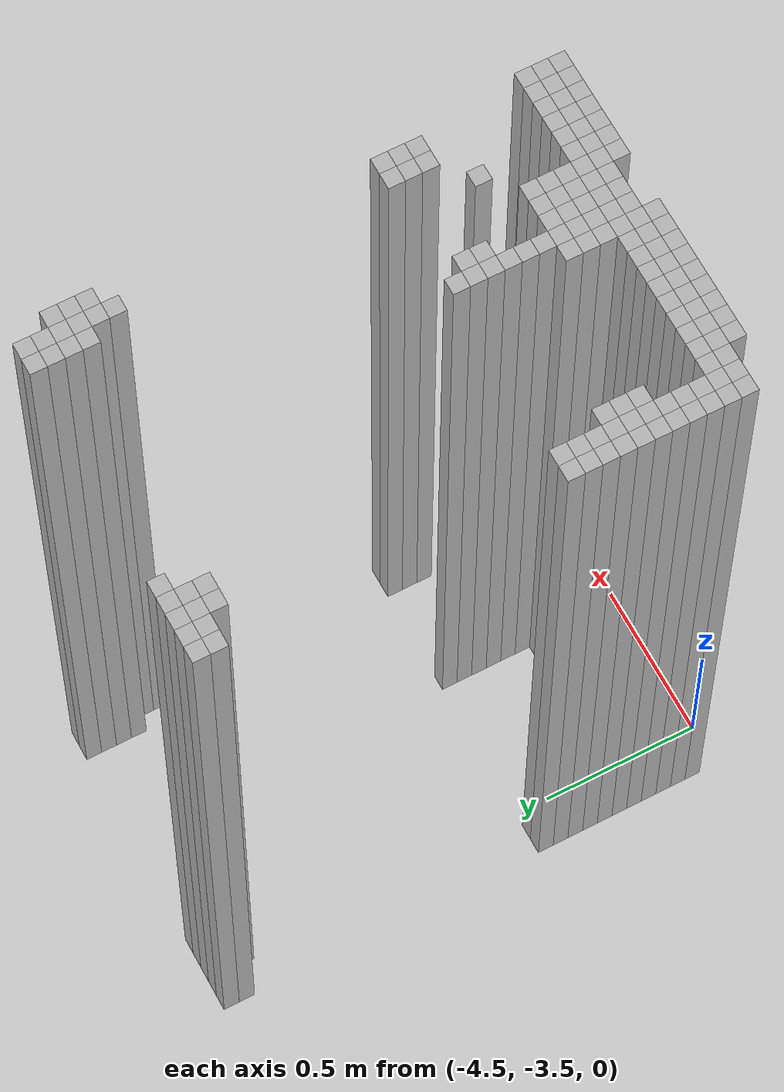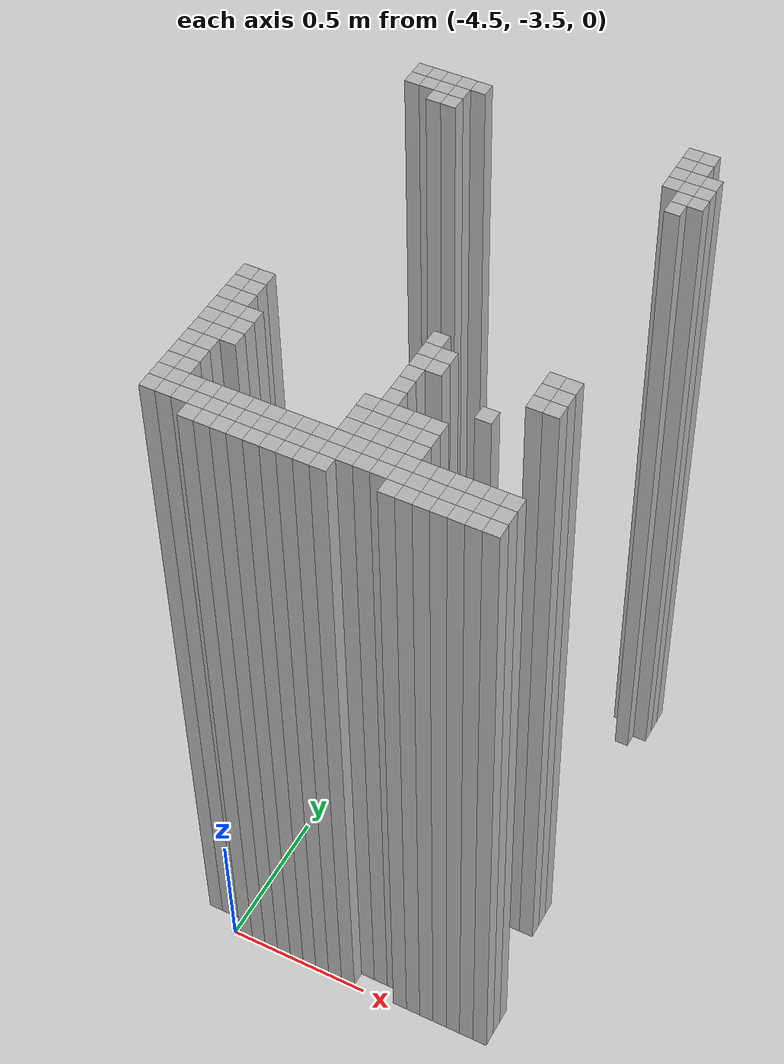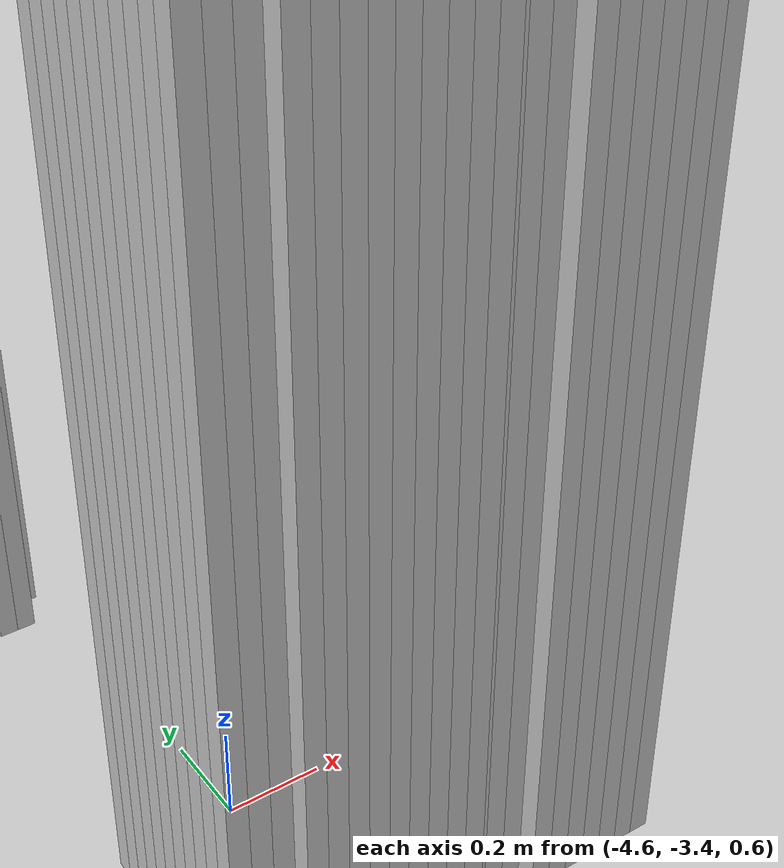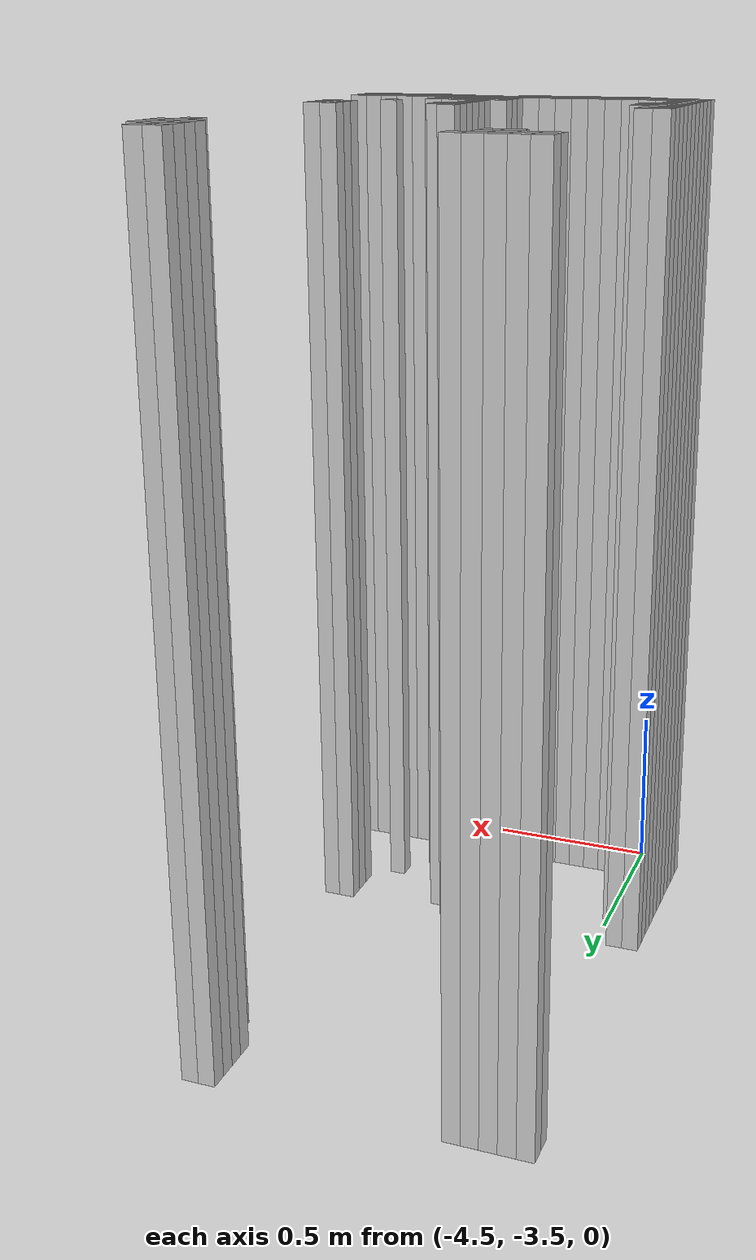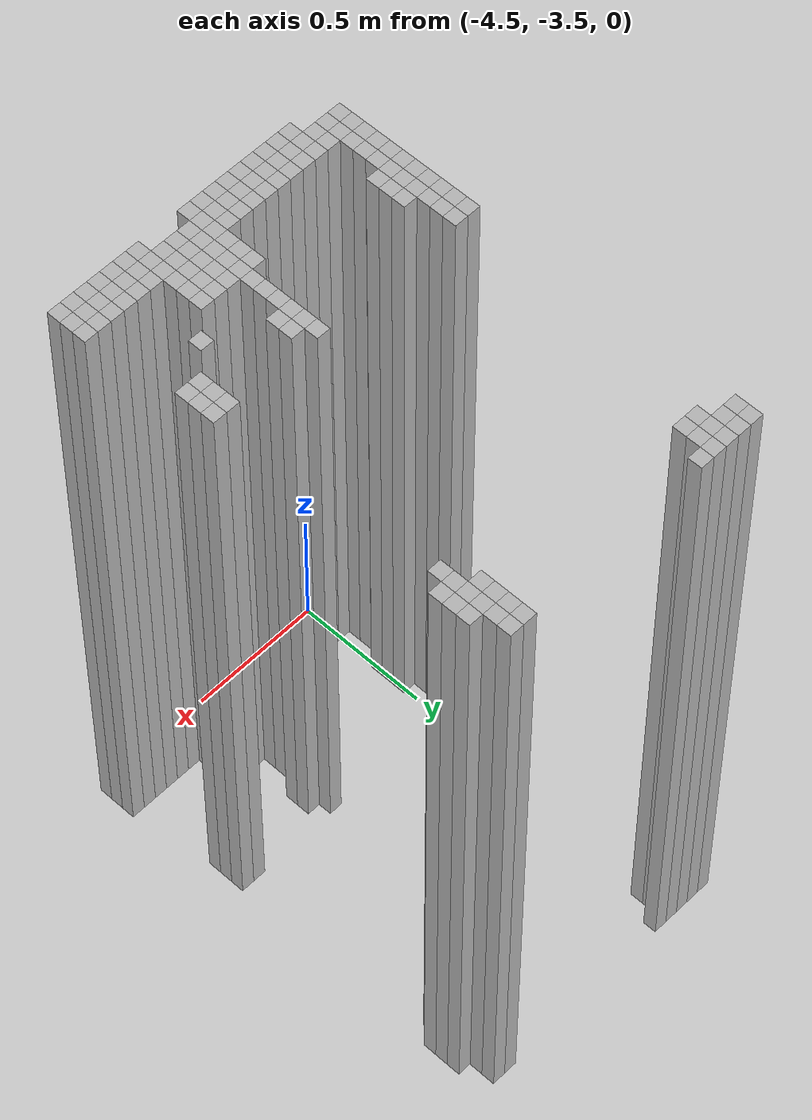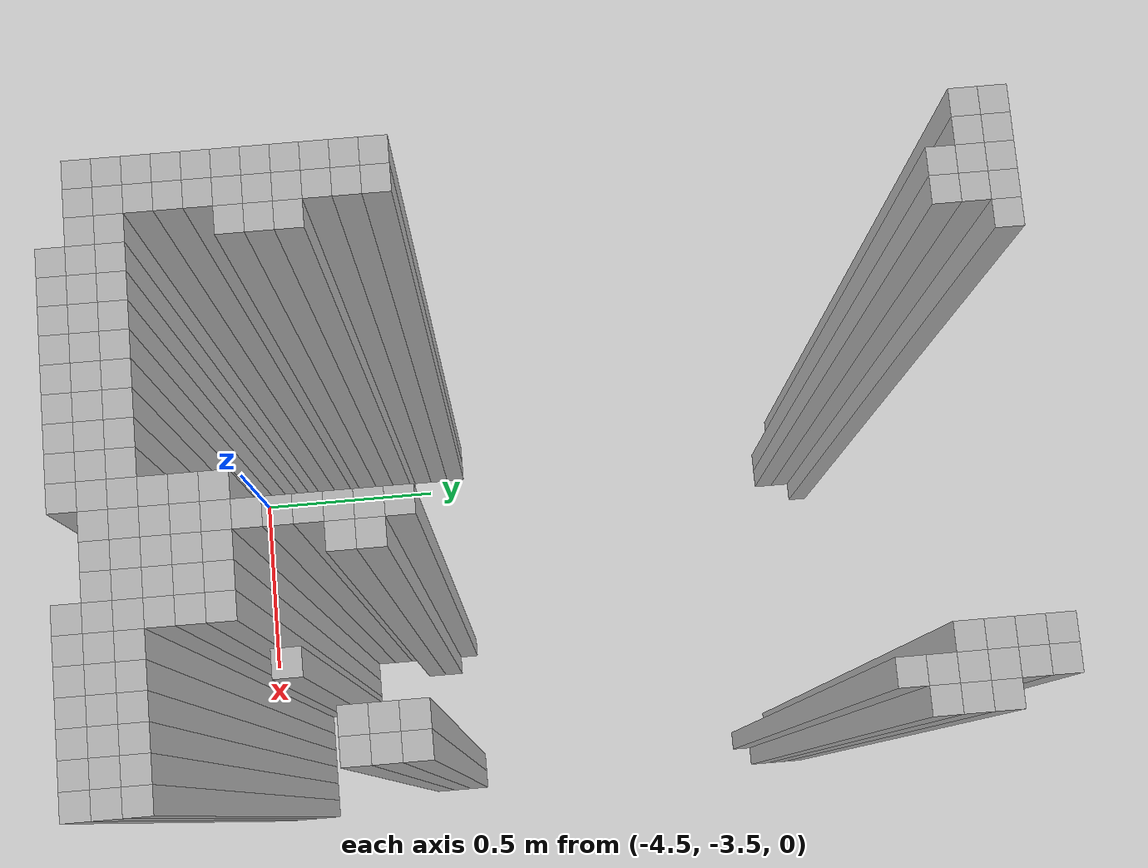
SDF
<sdf version="1.9">
 <world name="map_world">
  <model name="wall_131_191">
   <static>true</static>
   <pose>-4.611 -1.870 1.250 0 0 0</pose>
   <link name="link">
    <collision name="collision"><geometry><box><size>0.050 0.050 2.500</size></box></geometry></collision>
    <visual name="visual"><geometry><box><size>0.050 0.050 2.500</size></box></geometry></visual>
   </link>
  </model>
  <model name="wall_132_191">
   <static>true</static>
   <pose>-4.561 -1.870 1.250 0 0 0</pose>
   <link name="link">
    <collision name="collision"><geometry><box><size>0.050 0.050 2.500</size></box></geometry></collision>
    <visual name="visual"><geometry><box><size>0.050 0.050 2.500</size></box></geometry></visual>
   </link>
  </model>
  <model name="wall_133_191">
   <static>true</static>
   <pose>-4.511 -1.870 1.250 0 0 0</pose>
   <link name="link">
    <collision name="collision"><geometry><box><size>0.050 0.050 2.500</size></box></geometry></collision>
    <visual name="visual"><geometry><box><size>0.050 0.050 2.500</size></box></geometry></visual>
   </link>
  </model>
  <model name="wall_134_191">
   <static>true</static>
   <pose>-4.461 -1.870 1.250 0 0 0</pose>
   <link name="link">
    <collision name="collision"><geometry><box><size>0.050 0.050 2.500</size></box></geometry></collision>
    <visual name="visual"><geometry><box><size>0.050 0.050 2.500</size></box></geometry></visual>
   </link>
  </model>
  <model name="wall_135_191">
   <static>true</static>
   <pose>-4.411 -1.870 1.250 0 0 0</pose>
   <link name="link">
    <collision name="collision"><geometry><box><size>0.050 0.050 2.500</size></box></geometry></collision>
    <visual name="visual"><geometry><box><size>0.050 0.050 2.500</size></box></geometry></visual>
   </link>
  </model>
  <model name="wall_149_191">
   <static>true</static>
   <pose>-3.711 -1.870 1.250 0 0 0</pose>
   <link name="link">
    <collision name="collision"><geometry><box><size>0.050 0.050 2.500</size></box></geometry></collision>
    <visual name="visual"><geometry><box><size>0.050 0.050 2.500</size></box></geometry></visual>
   </link>
  </model>
  <model name="wall_150_191">
   <static>true</static>
   <pose>-3.661 -1.870 1.250 0 0 0</pose>
   <link name="link">
    <collision name="collision"><geometry><box><size>0.050 0.050 2.500</size></box></geometry></collision>
    <visual name="visual"><geometry><box><size>0.050 0.050 2.500</size></box></geometry></visual>
   </link>
  </model>
  <model name="wall_131_192">
   <static>true</static>
   <pose>-4.611 -1.920 1.250 0 0 0</pose>
   <link name="link">
    <collision name="collision"><geometry><box><size>0.050 0.050 2.500</size></box></geometry></collision>
    <visual name="visual"><geometry><box><size>0.050 0.050 2.500</size></box></geometry></visual>
   </link>
  </model>
  <model name="wall_132_192">
   <static>true</static>
   <pose>-4.561 -1.920 1.250 0 0 0</pose>
   <link name="link">
    <collision name="collision"><geometry><box><size>0.050 0.050 2.500</size></box></geometry></collision>
    <visual name="visual"><geometry><box><size>0.050 0.050 2.500</size></box></geometry></visual>
   </link>
  </model>
  <model name="wall_133_192">
   <static>true</static>
   <pose>-4.511 -1.920 1.250 0 0 0</pose>
   <link name="link">
    <collision name="collision"><geometry><box><size>0.050 0.050 2.500</size></box></geometry></collision>
    <visual name="visual"><geometry><box><size>0.050 0.050 2.500</size></box></geometry></visual>
   </link>
  </model>
  <model name="wall_134_192">
   <static>true</static>
   <pose>-4.461 -1.920 1.250 0 0 0</pose>
   <link name="link">
    <collision name="collision"><geometry><box><size>0.050 0.050 2.500</size></box></geometry></collision>
    <visual name="visual"><geometry><box><size>0.050 0.050 2.500</size></box></geometry></visual>
   </link>
  </model>
  <model name="wall_149_192">
   <static>true</static>
   <pose>-3.711 -1.920 1.250 0 0 0</pose>
   <link name="link">
    <collision name="collision"><geometry><box><size>0.050 0.050 2.500</size></box></geometry></collision>
    <visual name="visual"><geometry><box><size>0.050 0.050 2.500</size></box></geometry></visual>
   </link>
  </model>
  <model name="wall_150_192">
   <static>true</static>
   <pose>-3.661 -1.920 1.250 0 0 0</pose>
   <link name="link">
    <collision name="collision"><geometry><box><size>0.050 0.050 2.500</size></box></geometry></collision>
    <visual name="visual"><geometry><box><size>0.050 0.050 2.500</size></box></geometry></visual>
   </link>
  </model>
  <model name="wall_133_193">
   <static>true</static>
   <pose>-4.511 -1.970 1.250 0 0 0</pose>
   <link name="link">
    <collision name="collision"><geometry><box><size>0.050 0.050 2.500</size></box></geometry></collision>
    <visual name="visual"><geometry><box><size>0.050 0.050 2.500</size></box></geometry></visual>
   </link>
  </model>
  <model name="wall_134_193">
   <static>true</static>
   <pose>-4.461 -1.970 1.250 0 0 0</pose>
   <link name="link">
    <collision name="collision"><geometry><box><size>0.050 0.050 2.500</size></box></geometry></collision>
    <visual name="visual"><geometry><box><size>0.050 0.050 2.500</size></box></geometry></visual>
   </link>
  </model>
  <model name="wall_149_193">
   <static>true</static>
   <pose>-3.711 -1.970 1.250 0 0 0</pose>
   <link name="link">
    <collision name="collision"><geometry><box><size>0.050 0.050 2.500</size></box></geometry></collision>
    <visual name="visual"><geometry><box><size>0.050 0.050 2.500</size></box></geometry></visual>
   </link>
  </model>
  <model name="wall_150_193">
   <static>true</static>
   <pose>-3.661 -1.970 1.250 0 0 0</pose>
   <link name="link">
    <collision name="collision"><geometry><box><size>0.050 0.050 2.500</size></box></geometry></collision>
    <visual name="visual"><geometry><box><size>0.050 0.050 2.500</size></box></geometry></visual>
   </link>
  </model>
  <model name="wall_151_193">
   <static>true</static>
   <pose>-3.611 -1.970 1.250 0 0 0</pose>
   <link name="link">
    <collision name="collision"><geometry><box><size>0.050 0.050 2.500</size></box></geometry></collision>
    <visual name="visual"><geometry><box><size>0.050 0.050 2.500</size></box></geometry></visual>
   </link>
  </model>
  <model name="wall_149_194">
   <static>true</static>
   <pose>-3.711 -2.020 1.250 0 0 0</pose>
   <link name="link">
    <collision name="collision"><geometry><box><size>0.050 0.050 2.500</size></box></geometry></collision>
    <visual name="visual"><geometry><box><size>0.050 0.050 2.500</size></box></geometry></visual>
   </link>
  </model>
  <model name="wall_150_194">
   <static>true</static>
   <pose>-3.661 -2.020 1.250 0 0 0</pose>
   <link name="link">
    <collision name="collision"><geometry><box><size>0.050 0.050 2.500</size></box></geometry></collision>
    <visual name="visual"><geometry><box><size>0.050 0.050 2.500</size></box></geometry></visual>
   </link>
  </model>
  <model name="wall_151_194">
   <static>true</static>
   <pose>-3.611 -2.020 1.250 0 0 0</pose>
   <link name="link">
    <collision name="collision"><geometry><box><size>0.050 0.050 2.500</size></box></geometry></collision>
    <visual name="visual"><geometry><box><size>0.050 0.050 2.500</size></box></geometry></visual>
   </link>
  </model>
  <model name="wall_150_195">
   <static>true</static>
   <pose>-3.661 -2.070 1.250 0 0 0</pose>
   <link name="link">
    <collision name="collision"><geometry><box><size>0.050 0.050 2.500</size></box></geometry></collision>
    <visual name="visual"><geometry><box><size>0.050 0.050 2.500</size></box></geometry></visual>
   </link>
  </model>
  <model name="wall_151_195">
   <static>true</static>
   <pose>-3.611 -2.070 1.250 0 0 0</pose>
   <link name="link">
    <collision name="collision"><geometry><box><size>0.050 0.050 2.500</size></box></geometry></collision>
    <visual name="visual"><geometry><box><size>0.050 0.050 2.500</size></box></geometry></visual>
   </link>
  </model>
  <model name="wall_150_196">
   <static>true</static>
   <pose>-3.661 -2.120 1.250 0 0 0</pose>
   <link name="link">
    <collision name="collision"><geometry><box><size>0.050 0.050 2.500</size></box></geometry></collision>
    <visual name="visual"><geometry><box><size>0.050 0.050 2.500</size></box></geometry></visual>
   </link>
  </model>
  <model name="wall_131_212">
   <static>true</static>
   <pose>-4.611 -2.920 1.250 0 0 0</pose>
   <link name="link">
    <collision name="collision"><geometry><box><size>0.050 0.050 2.500</size></box></geometry></collision>
    <visual name="visual"><geometry><box><size>0.050 0.050 2.500</size></box></geometry></visual>
   </link>
  </model>
  <model name="wall_132_212">
   <static>true</static>
   <pose>-4.561 -2.920 1.250 0 0 0</pose>
   <link name="link">
    <collision name="collision"><geometry><box><size>0.050 0.050 2.500</size></box></geometry></collision>
    <visual name="visual"><geometry><box><size>0.050 0.050 2.500</size></box></geometry></visual>
   </link>
  </model>
  <model name="wall_143_212">
   <static>true</static>
   <pose>-4.011 -2.920 1.250 0 0 0</pose>
   <link name="link">
    <collision name="collision"><geometry><box><size>0.050 0.050 2.500</size></box></geometry></collision>
    <visual name="visual"><geometry><box><size>0.050 0.050 2.500</size></box></geometry></visual>
   </link>
  </model>
  <model name="wall_150_212">
   <static>true</static>
   <pose>-3.661 -2.920 1.250 0 0 0</pose>
   <link name="link">
    <collision name="collision"><geometry><box><size>0.050 0.050 2.500</size></box></geometry></collision>
    <visual name="visual"><geometry><box><size>0.050 0.050 2.500</size></box></geometry></visual>
   </link>
  </model>
  <model name="wall_151_212">
   <static>true</static>
   <pose>-3.611 -2.920 1.250 0 0 0</pose>
   <link name="link">
    <collision name="collision"><geometry><box><size>0.050 0.050 2.500</size></box></geometry></collision>
    <visual name="visual"><geometry><box><size>0.050 0.050 2.500</size></box></geometry></visual>
   </link>
  </model>
  <model name="wall_131_213">
   <static>true</static>
   <pose>-4.611 -2.970 1.250 0 0 0</pose>
   <link name="link">
    <collision name="collision"><geometry><box><size>0.050 0.050 2.500</size></box></geometry></collision>
    <visual name="visual"><geometry><box><size>0.050 0.050 2.500</size></box></geometry></visual>
   </link>
  </model>
  <model name="wall_132_213">
   <static>true</static>
   <pose>-4.561 -2.970 1.250 0 0 0</pose>
   <link name="link">
    <collision name="collision"><geometry><box><size>0.050 0.050 2.500</size></box></geometry></collision>
    <visual name="visual"><geometry><box><size>0.050 0.050 2.500</size></box></geometry></visual>
   </link>
  </model>
  <model name="wall_143_213">
   <static>true</static>
   <pose>-4.011 -2.970 1.250 0 0 0</pose>
   <link name="link">
    <collision name="collision"><geometry><box><size>0.050 0.050 2.500</size></box></geometry></collision>
    <visual name="visual"><geometry><box><size>0.050 0.050 2.500</size></box></geometry></visual>
   </link>
  </model>
  <model name="wall_144_213">
   <static>true</static>
   <pose>-3.961 -2.970 1.250 0 0 0</pose>
   <link name="link">
    <collision name="collision"><geometry><box><size>0.050 0.050 2.500</size></box></geometry></collision>
    <visual name="visual"><geometry><box><size>0.050 0.050 2.500</size></box></geometry></visual>
   </link>
  </model>
  <model name="wall_150_213">
   <static>true</static>
   <pose>-3.661 -2.970 1.250 0 0 0</pose>
   <link name="link">
    <collision name="collision"><geometry><box><size>0.050 0.050 2.500</size></box></geometry></collision>
    <visual name="visual"><geometry><box><size>0.050 0.050 2.500</size></box></geometry></visual>
   </link>
  </model>
  <model name="wall_151_213">
   <static>true</static>
   <pose>-3.611 -2.970 1.250 0 0 0</pose>
   <link name="link">
    <collision name="collision"><geometry><box><size>0.050 0.050 2.500</size></box></geometry></collision>
    <visual name="visual"><geometry><box><size>0.050 0.050 2.500</size></box></geometry></visual>
   </link>
  </model>
  <model name="wall_131_214">
   <static>true</static>
   <pose>-4.611 -3.020 1.250 0 0 0</pose>
   <link name="link">
    <collision name="collision"><geometry><box><size>0.050 0.050 2.500</size></box></geometry></collision>
    <visual name="visual"><geometry><box><size>0.050 0.050 2.500</size></box></geometry></visual>
   </link>
  </model>
  <model name="wall_132_214">
   <static>true</static>
   <pose>-4.561 -3.020 1.250 0 0 0</pose>
   <link name="link">
    <collision name="collision"><geometry><box><size>0.050 0.050 2.500</size></box></geometry></collision>
    <visual name="visual"><geometry><box><size>0.050 0.050 2.500</size></box></geometry></visual>
   </link>
  </model>
  <model name="wall_143_214">
   <static>true</static>
   <pose>-4.011 -3.020 1.250 0 0 0</pose>
   <link name="link">
    <collision name="collision"><geometry><box><size>0.050 0.050 2.500</size></box></geometry></collision>
    <visual name="visual"><geometry><box><size>0.050 0.050 2.500</size></box></geometry></visual>
   </link>
  </model>
  <model name="wall_144_214">
   <static>true</static>
   <pose>-3.961 -3.020 1.250 0 0 0</pose>
   <link name="link">
    <collision name="collision"><geometry><box><size>0.050 0.050 2.500</size></box></geometry></collision>
    <visual name="visual"><geometry><box><size>0.050 0.050 2.500</size></box></geometry></visual>
   </link>
  </model>
  <model name="wall_150_214">
   <static>true</static>
   <pose>-3.661 -3.020 1.250 0 0 0</pose>
   <link name="link">
    <collision name="collision"><geometry><box><size>0.050 0.050 2.500</size></box></geometry></collision>
    <visual name="visual"><geometry><box><size>0.050 0.050 2.500</size></box></geometry></visual>
   </link>
  </model>
  <model name="wall_151_214">
   <static>true</static>
   <pose>-3.611 -3.020 1.250 0 0 0</pose>
   <link name="link">
    <collision name="collision"><geometry><box><size>0.050 0.050 2.500</size></box></geometry></collision>
    <visual name="visual"><geometry><box><size>0.050 0.050 2.500</size></box></geometry></visual>
   </link>
  </model>
  <model name="wall_131_215">
   <static>true</static>
   <pose>-4.611 -3.070 1.250 0 0 0</pose>
   <link name="link">
    <collision name="collision"><geometry><box><size>0.050 0.050 2.500</size></box></geometry></collision>
    <visual name="visual"><geometry><box><size>0.050 0.050 2.500</size></box></geometry></visual>
   </link>
  </model>
  <model name="wall_132_215">
   <static>true</static>
   <pose>-4.561 -3.070 1.250 0 0 0</pose>
   <link name="link">
    <collision name="collision"><geometry><box><size>0.050 0.050 2.500</size></box></geometry></collision>
    <visual name="visual"><geometry><box><size>0.050 0.050 2.500</size></box></geometry></visual>
   </link>
  </model>
  <model name="wall_133_215">
   <static>true</static>
   <pose>-4.511 -3.070 1.250 0 0 0</pose>
   <link name="link">
    <collision name="collision"><geometry><box><size>0.050 0.050 2.500</size></box></geometry></collision>
    <visual name="visual"><geometry><box><size>0.050 0.050 2.500</size></box></geometry></visual>
   </link>
  </model>
  <model name="wall_143_215">
   <static>true</static>
   <pose>-4.011 -3.070 1.250 0 0 0</pose>
   <link name="link">
    <collision name="collision"><geometry><box><size>0.050 0.050 2.500</size></box></geometry></collision>
    <visual name="visual"><geometry><box><size>0.050 0.050 2.500</size></box></geometry></visual>
   </link>
  </model>
  <model name="wall_131_216">
   <static>true</static>
   <pose>-4.611 -3.120 1.250 0 0 0</pose>
   <link name="link">
    <collision name="collision"><geometry><box><size>0.050 0.050 2.500</size></box></geometry></collision>
    <visual name="visual"><geometry><box><size>0.050 0.050 2.500</size></box></geometry></visual>
   </link>
  </model>
  <model name="wall_132_216">
   <static>true</static>
   <pose>-4.561 -3.120 1.250 0 0 0</pose>
   <link name="link">
    <collision name="collision"><geometry><box><size>0.050 0.050 2.500</size></box></geometry></collision>
    <visual name="visual"><geometry><box><size>0.050 0.050 2.500</size></box></geometry></visual>
   </link>
  </model>
  <model name="wall_133_216">
   <static>true</static>
   <pose>-4.511 -3.120 1.250 0 0 0</pose>
   <link name="link">
    <collision name="collision"><geometry><box><size>0.050 0.050 2.500</size></box></geometry></collision>
    <visual name="visual"><geometry><box><size>0.050 0.050 2.500</size></box></geometry></visual>
   </link>
  </model>
  <model name="wall_143_216">
   <static>true</static>
   <pose>-4.011 -3.120 1.250 0 0 0</pose>
   <link name="link">
    <collision name="collision"><geometry><box><size>0.050 0.050 2.500</size></box></geometry></collision>
    <visual name="visual"><geometry><box><size>0.050 0.050 2.500</size></box></geometry></visual>
   </link>
  </model>
  <model name="wall_148_216">
   <static>true</static>
   <pose>-3.761 -3.120 1.250 0 0 0</pose>
   <link name="link">
    <collision name="collision"><geometry><box><size>0.050 0.050 2.500</size></box></geometry></collision>
    <visual name="visual"><geometry><box><size>0.050 0.050 2.500</size></box></geometry></visual>
   </link>
  </model>
  <model name="wall_131_217">
   <static>true</static>
   <pose>-4.611 -3.170 1.250 0 0 0</pose>
   <link name="link">
    <collision name="collision"><geometry><box><size>0.050 0.050 2.500</size></box></geometry></collision>
    <visual name="visual"><geometry><box><size>0.050 0.050 2.500</size></box></geometry></visual>
   </link>
  </model>
  <model name="wall_132_217">
   <static>true</static>
   <pose>-4.561 -3.170 1.250 0 0 0</pose>
   <link name="link">
    <collision name="collision"><geometry><box><size>0.050 0.050 2.500</size></box></geometry></collision>
    <visual name="visual"><geometry><box><size>0.050 0.050 2.500</size></box></geometry></visual>
   </link>
  </model>
  <model name="wall_133_217">
   <static>true</static>
   <pose>-4.511 -3.170 1.250 0 0 0</pose>
   <link name="link">
    <collision name="collision"><geometry><box><size>0.050 0.050 2.500</size></box></geometry></collision>
    <visual name="visual"><geometry><box><size>0.050 0.050 2.500</size></box></geometry></visual>
   </link>
  </model>
  <model name="wall_143_217">
   <static>true</static>
   <pose>-4.011 -3.170 1.250 0 0 0</pose>
   <link name="link">
    <collision name="collision"><geometry><box><size>0.050 0.050 2.500</size></box></geometry></collision>
    <visual name="visual"><geometry><box><size>0.050 0.050 2.500</size></box></geometry></visual>
   </link>
  </model>
  <model name="wall_131_218">
   <static>true</static>
   <pose>-4.611 -3.220 1.250 0 0 0</pose>
   <link name="link">
    <collision name="collision"><geometry><box><size>0.050 0.050 2.500</size></box></geometry></collision>
    <visual name="visual"><geometry><box><size>0.050 0.050 2.500</size></box></geometry></visual>
   </link>
  </model>
  <model name="wall_132_218">
   <static>true</static>
   <pose>-4.561 -3.220 1.250 0 0 0</pose>
   <link name="link">
    <collision name="collision"><geometry><box><size>0.050 0.050 2.500</size></box></geometry></collision>
    <visual name="visual"><geometry><box><size>0.050 0.050 2.500</size></box></geometry></visual>
   </link>
  </model>
  <model name="wall_142_218">
   <static>true</static>
   <pose>-4.061 -3.220 1.250 0 0 0</pose>
   <link name="link">
    <collision name="collision"><geometry><box><size>0.050 0.050 2.500</size></box></geometry></collision>
    <visual name="visual"><geometry><box><size>0.050 0.050 2.500</size></box></geometry></visual>
   </link>
  </model>
  <model name="wall_143_218">
   <static>true</static>
   <pose>-4.011 -3.220 1.250 0 0 0</pose>
   <link name="link">
    <collision name="collision"><geometry><box><size>0.050 0.050 2.500</size></box></geometry></collision>
    <visual name="visual"><geometry><box><size>0.050 0.050 2.500</size></box></geometry></visual>
   </link>
  </model>
  <model name="wall_144_218">
   <static>true</static>
   <pose>-3.961 -3.220 1.250 0 0 0</pose>
   <link name="link">
    <collision name="collision"><geometry><box><size>0.050 0.050 2.500</size></box></geometry></collision>
    <visual name="visual"><geometry><box><size>0.050 0.050 2.500</size></box></geometry></visual>
   </link>
  </model>
  <model name="wall_145_218">
   <static>true</static>
   <pose>-3.911 -3.220 1.250 0 0 0</pose>
   <link name="link">
    <collision name="collision"><geometry><box><size>0.050 0.050 2.500</size></box></geometry></collision>
    <visual name="visual"><geometry><box><size>0.050 0.050 2.500</size></box></geometry></visual>
   </link>
  </model>
  <model name="wall_146_218">
   <static>true</static>
   <pose>-3.861 -3.220 1.250 0 0 0</pose>
   <link name="link">
    <collision name="collision"><geometry><box><size>0.050 0.050 2.500</size></box></geometry></collision>
    <visual name="visual"><geometry><box><size>0.050 0.050 2.500</size></box></geometry></visual>
   </link>
  </model>
  <model name="wall_131_219">
   <static>true</static>
   <pose>-4.611 -3.270 1.250 0 0 0</pose>
   <link name="link">
    <collision name="collision"><geometry><box><size>0.050 0.050 2.500</size></box></geometry></collision>
    <visual name="visual"><geometry><box><size>0.050 0.050 2.500</size></box></geometry></visual>
   </link>
  </model>
  <model name="wall_132_219">
   <static>true</static>
   <pose>-4.561 -3.270 1.250 0 0 0</pose>
   <link name="link">
    <collision name="collision"><geometry><box><size>0.050 0.050 2.500</size></box></geometry></collision>
    <visual name="visual"><geometry><box><size>0.050 0.050 2.500</size></box></geometry></visual>
   </link>
  </model>
  <model name="wall_142_219">
   <static>true</static>
   <pose>-4.061 -3.270 1.250 0 0 0</pose>
   <link name="link">
    <collision name="collision"><geometry><box><size>0.050 0.050 2.500</size></box></geometry></collision>
    <visual name="visual"><geometry><box><size>0.050 0.050 2.500</size></box></geometry></visual>
   </link>
  </model>
  <model name="wall_143_219">
   <static>true</static>
   <pose>-4.011 -3.270 1.250 0 0 0</pose>
   <link name="link">
    <collision name="collision"><geometry><box><size>0.050 0.050 2.500</size></box></geometry></collision>
    <visual name="visual"><geometry><box><size>0.050 0.050 2.500</size></box></geometry></visual>
   </link>
  </model>
  <model name="wall_144_219">
   <static>true</static>
   <pose>-3.961 -3.270 1.250 0 0 0</pose>
   <link name="link">
    <collision name="collision"><geometry><box><size>0.050 0.050 2.500</size></box></geometry></collision>
    <visual name="visual"><geometry><box><size>0.050 0.050 2.500</size></box></geometry></visual>
   </link>
  </model>
  <model name="wall_145_219">
   <static>true</static>
   <pose>-3.911 -3.270 1.250 0 0 0</pose>
   <link name="link">
    <collision name="collision"><geometry><box><size>0.050 0.050 2.500</size></box></geometry></collision>
    <visual name="visual"><geometry><box><size>0.050 0.050 2.500</size></box></geometry></visual>
   </link>
  </model>
  <model name="wall_146_219">
   <static>true</static>
   <pose>-3.861 -3.270 1.250 0 0 0</pose>
   <link name="link">
    <collision name="collision"><geometry><box><size>0.050 0.050 2.500</size></box></geometry></collision>
    <visual name="visual"><geometry><box><size>0.050 0.050 2.500</size></box></geometry></visual>
   </link>
  </model>
  <model name="wall_131_220">
   <static>true</static>
   <pose>-4.611 -3.320 1.250 0 0 0</pose>
   <link name="link">
    <collision name="collision"><geometry><box><size>0.050 0.050 2.500</size></box></geometry></collision>
    <visual name="visual"><geometry><box><size>0.050 0.050 2.500</size></box></geometry></visual>
   </link>
  </model>
  <model name="wall_132_220">
   <static>true</static>
   <pose>-4.561 -3.320 1.250 0 0 0</pose>
   <link name="link">
    <collision name="collision"><geometry><box><size>0.050 0.050 2.500</size></box></geometry></collision>
    <visual name="visual"><geometry><box><size>0.050 0.050 2.500</size></box></geometry></visual>
   </link>
  </model>
  <model name="wall_142_220">
   <static>true</static>
   <pose>-4.061 -3.320 1.250 0 0 0</pose>
   <link name="link">
    <collision name="collision"><geometry><box><size>0.050 0.050 2.500</size></box></geometry></collision>
    <visual name="visual"><geometry><box><size>0.050 0.050 2.500</size></box></geometry></visual>
   </link>
  </model>
  <model name="wall_143_220">
   <static>true</static>
   <pose>-4.011 -3.320 1.250 0 0 0</pose>
   <link name="link">
    <collision name="collision"><geometry><box><size>0.050 0.050 2.500</size></box></geometry></collision>
    <visual name="visual"><geometry><box><size>0.050 0.050 2.500</size></box></geometry></visual>
   </link>
  </model>
  <model name="wall_144_220">
   <static>true</static>
   <pose>-3.961 -3.320 1.250 0 0 0</pose>
   <link name="link">
    <collision name="collision"><geometry><box><size>0.050 0.050 2.500</size></box></geometry></collision>
    <visual name="visual"><geometry><box><size>0.050 0.050 2.500</size></box></geometry></visual>
   </link>
  </model>
  <model name="wall_145_220">
   <static>true</static>
   <pose>-3.911 -3.320 1.250 0 0 0</pose>
   <link name="link">
    <collision name="collision"><geometry><box><size>0.050 0.050 2.500</size></box></geometry></collision>
    <visual name="visual"><geometry><box><size>0.050 0.050 2.500</size></box></geometry></visual>
   </link>
  </model>
  <model name="wall_146_220">
   <static>true</static>
   <pose>-3.861 -3.320 1.250 0 0 0</pose>
   <link name="link">
    <collision name="collision"><geometry><box><size>0.050 0.050 2.500</size></box></geometry></collision>
    <visual name="visual"><geometry><box><size>0.050 0.050 2.500</size></box></geometry></visual>
   </link>
  </model>
  <model name="wall_131_221">
   <static>true</static>
   <pose>-4.611 -3.370 1.250 0 0 0</pose>
   <link name="link">
    <collision name="collision"><geometry><box><size>0.050 0.050 2.500</size></box></geometry></collision>
    <visual name="visual"><geometry><box><size>0.050 0.050 2.500</size></box></geometry></visual>
   </link>
  </model>
  <model name="wall_132_221">
   <static>true</static>
   <pose>-4.561 -3.370 1.250 0 0 0</pose>
   <link name="link">
    <collision name="collision"><geometry><box><size>0.050 0.050 2.500</size></box></geometry></collision>
    <visual name="visual"><geometry><box><size>0.050 0.050 2.500</size></box></geometry></visual>
   </link>
  </model>
  <model name="wall_133_221">
   <static>true</static>
   <pose>-4.511 -3.370 1.250 0 0 0</pose>
   <link name="link">
    <collision name="collision"><geometry><box><size>0.050 0.050 2.500</size></box></geometry></collision>
    <visual name="visual"><geometry><box><size>0.050 0.050 2.500</size></box></geometry></visual>
   </link>
  </model>
  <model name="wall_134_221">
   <static>true</static>
   <pose>-4.461 -3.370 1.250 0 0 0</pose>
   <link name="link">
    <collision name="collision"><geometry><box><size>0.050 0.050 2.500</size></box></geometry></collision>
    <visual name="visual"><geometry><box><size>0.050 0.050 2.500</size></box></geometry></visual>
   </link>
  </model>
  <model name="wall_135_221">
   <static>true</static>
   <pose>-4.411 -3.370 1.250 0 0 0</pose>
   <link name="link">
    <collision name="collision"><geometry><box><size>0.050 0.050 2.500</size></box></geometry></collision>
    <visual name="visual"><geometry><box><size>0.050 0.050 2.500</size></box></geometry></visual>
   </link>
  </model>
  <model name="wall_136_221">
   <static>true</static>
   <pose>-4.361 -3.370 1.250 0 0 0</pose>
   <link name="link">
    <collision name="collision"><geometry><box><size>0.050 0.050 2.500</size></box></geometry></collision>
    <visual name="visual"><geometry><box><size>0.050 0.050 2.500</size></box></geometry></visual>
   </link>
  </model>
  <model name="wall_137_221">
   <static>true</static>
   <pose>-4.311 -3.370 1.250 0 0 0</pose>
   <link name="link">
    <collision name="collision"><geometry><box><size>0.050 0.050 2.500</size></box></geometry></collision>
    <visual name="visual"><geometry><box><size>0.050 0.050 2.500</size></box></geometry></visual>
   </link>
  </model>
  <model name="wall_138_221">
   <static>true</static>
   <pose>-4.261 -3.370 1.250 0 0 0</pose>
   <link name="link">
    <collision name="collision"><geometry><box><size>0.050 0.050 2.500</size></box></geometry></collision>
    <visual name="visual"><geometry><box><size>0.050 0.050 2.500</size></box></geometry></visual>
   </link>
  </model>
  <model name="wall_139_221">
   <static>true</static>
   <pose>-4.211 -3.370 1.250 0 0 0</pose>
   <link name="link">
    <collision name="collision"><geometry><box><size>0.050 0.050 2.500</size></box></geometry></collision>
    <visual name="visual"><geometry><box><size>0.050 0.050 2.500</size></box></geometry></visual>
   </link>
  </model>
  <model name="wall_140_221">
   <static>true</static>
   <pose>-4.161 -3.370 1.250 0 0 0</pose>
   <link name="link">
    <collision name="collision"><geometry><box><size>0.050 0.050 2.500</size></box></geometry></collision>
    <visual name="visual"><geometry><box><size>0.050 0.050 2.500</size></box></geometry></visual>
   </link>
  </model>
  <model name="wall_141_221">
   <static>true</static>
   <pose>-4.111 -3.370 1.250 0 0 0</pose>
   <link name="link">
    <collision name="collision"><geometry><box><size>0.050 0.050 2.500</size></box></geometry></collision>
    <visual name="visual"><geometry><box><size>0.050 0.050 2.500</size></box></geometry></visual>
   </link>
  </model>
  <model name="wall_142_221">
   <static>true</static>
   <pose>-4.061 -3.370 1.250 0 0 0</pose>
   <link name="link">
    <collision name="collision"><geometry><box><size>0.050 0.050 2.500</size></box></geometry></collision>
    <visual name="visual"><geometry><box><size>0.050 0.050 2.500</size></box></geometry></visual>
   </link>
  </model>
  <model name="wall_143_221">
   <static>true</static>
   <pose>-4.011 -3.370 1.250 0 0 0</pose>
   <link name="link">
    <collision name="collision"><geometry><box><size>0.050 0.050 2.500</size></box></geometry></collision>
    <visual name="visual"><geometry><box><size>0.050 0.050 2.500</size></box></geometry></visual>
   </link>
  </model>
  <model name="wall_144_221">
   <static>true</static>
   <pose>-3.961 -3.370 1.250 0 0 0</pose>
   <link name="link">
    <collision name="collision"><geometry><box><size>0.050 0.050 2.500</size></box></geometry></collision>
    <visual name="visual"><geometry><box><size>0.050 0.050 2.500</size></box></geometry></visual>
   </link>
  </model>
  <model name="wall_145_221">
   <static>true</static>
   <pose>-3.911 -3.370 1.250 0 0 0</pose>
   <link name="link">
    <collision name="collision"><geometry><box><size>0.050 0.050 2.500</size></box></geometry></collision>
    <visual name="visual"><geometry><box><size>0.050 0.050 2.500</size></box></geometry></visual>
   </link>
  </model>
  <model name="wall_146_221">
   <static>true</static>
   <pose>-3.861 -3.370 1.250 0 0 0</pose>
   <link name="link">
    <collision name="collision"><geometry><box><size>0.050 0.050 2.500</size></box></geometry></collision>
    <visual name="visual"><geometry><box><size>0.050 0.050 2.500</size></box></geometry></visual>
   </link>
  </model>
  <model name="wall_147_221">
   <static>true</static>
   <pose>-3.811 -3.370 1.250 0 0 0</pose>
   <link name="link">
    <collision name="collision"><geometry><box><size>0.050 0.050 2.500</size></box></geometry></collision>
    <visual name="visual"><geometry><box><size>0.050 0.050 2.500</size></box></geometry></visual>
   </link>
  </model>
  <model name="wall_148_221">
   <static>true</static>
   <pose>-3.761 -3.370 1.250 0 0 0</pose>
   <link name="link">
    <collision name="collision"><geometry><box><size>0.050 0.050 2.500</size></box></geometry></collision>
    <visual name="visual"><geometry><box><size>0.050 0.050 2.500</size></box></geometry></visual>
   </link>
  </model>
  <model name="wall_149_221">
   <static>true</static>
   <pose>-3.711 -3.370 1.250 0 0 0</pose>
   <link name="link">
    <collision name="collision"><geometry><box><size>0.050 0.050 2.500</size></box></geometry></collision>
    <visual name="visual"><geometry><box><size>0.050 0.050 2.500</size></box></geometry></visual>
   </link>
  </model>
  <model name="wall_150_221">
   <static>true</static>
   <pose>-3.661 -3.370 1.250 0 0 0</pose>
   <link name="link">
    <collision name="collision"><geometry><box><size>0.050 0.050 2.500</size></box></geometry></collision>
    <visual name="visual"><geometry><box><size>0.050 0.050 2.500</size></box></geometry></visual>
   </link>
  </model>
  <model name="wall_151_221">
   <static>true</static>
   <pose>-3.611 -3.370 1.250 0 0 0</pose>
   <link name="link">
    <collision name="collision"><geometry><box><size>0.050 0.050 2.500</size></box></geometry></collision>
    <visual name="visual"><geometry><box><size>0.050 0.050 2.500</size></box></geometry></visual>
   </link>
  </model>
  <model name="wall_152_221">
   <static>true</static>
   <pose>-3.561 -3.370 1.250 0 0 0</pose>
   <link name="link">
    <collision name="collision"><geometry><box><size>0.050 0.050 2.500</size></box></geometry></collision>
    <visual name="visual"><geometry><box><size>0.050 0.050 2.500</size></box></geometry></visual>
   </link>
  </model>
  <model name="wall_131_222">
   <static>true</static>
   <pose>-4.611 -3.420 1.250 0 0 0</pose>
   <link name="link">
    <collision name="collision"><geometry><box><size>0.050 0.050 2.500</size></box></geometry></collision>
    <visual name="visual"><geometry><box><size>0.050 0.050 2.500</size></box></geometry></visual>
   </link>
  </model>
  <model name="wall_132_222">
   <static>true</static>
   <pose>-4.561 -3.420 1.250 0 0 0</pose>
   <link name="link">
    <collision name="collision"><geometry><box><size>0.050 0.050 2.500</size></box></geometry></collision>
    <visual name="visual"><geometry><box><size>0.050 0.050 2.500</size></box></geometry></visual>
   </link>
  </model>
  <model name="wall_133_222">
   <static>true</static>
   <pose>-4.511 -3.420 1.250 0 0 0</pose>
   <link name="link">
    <collision name="collision"><geometry><box><size>0.050 0.050 2.500</size></box></geometry></collision>
    <visual name="visual"><geometry><box><size>0.050 0.050 2.500</size></box></geometry></visual>
   </link>
  </model>
  <model name="wall_134_222">
   <static>true</static>
   <pose>-4.461 -3.420 1.250 0 0 0</pose>
   <link name="link">
    <collision name="collision"><geometry><box><size>0.050 0.050 2.500</size></box></geometry></collision>
    <visual name="visual"><geometry><box><size>0.050 0.050 2.500</size></box></geometry></visual>
   </link>
  </model>
  <model name="wall_135_222">
   <static>true</static>
   <pose>-4.411 -3.420 1.250 0 0 0</pose>
   <link name="link">
    <collision name="collision"><geometry><box><size>0.050 0.050 2.500</size></box></geometry></collision>
    <visual name="visual"><geometry><box><size>0.050 0.050 2.500</size></box></geometry></visual>
   </link>
  </model>
  <model name="wall_136_222">
   <static>true</static>
   <pose>-4.361 -3.420 1.250 0 0 0</pose>
   <link name="link">
    <collision name="collision"><geometry><box><size>0.050 0.050 2.500</size></box></geometry></collision>
    <visual name="visual"><geometry><box><size>0.050 0.050 2.500</size></box></geometry></visual>
   </link>
  </model>
  <model name="wall_137_222">
   <static>true</static>
   <pose>-4.311 -3.420 1.250 0 0 0</pose>
   <link name="link">
    <collision name="collision"><geometry><box><size>0.050 0.050 2.500</size></box></geometry></collision>
    <visual name="visual"><geometry><box><size>0.050 0.050 2.500</size></box></geometry></visual>
   </link>
  </model>
  <model name="wall_138_222">
   <static>true</static>
   <pose>-4.261 -3.420 1.250 0 0 0</pose>
   <link name="link">
    <collision name="collision"><geometry><box><size>0.050 0.050 2.500</size></box></geometry></collision>
    <visual name="visual"><geometry><box><size>0.050 0.050 2.500</size></box></geometry></visual>
   </link>
  </model>
  <model name="wall_139_222">
   <static>true</static>
   <pose>-4.211 -3.420 1.250 0 0 0</pose>
   <link name="link">
    <collision name="collision"><geometry><box><size>0.050 0.050 2.500</size></box></geometry></collision>
    <visual name="visual"><geometry><box><size>0.050 0.050 2.500</size></box></geometry></visual>
   </link>
  </model>
  <model name="wall_140_222">
   <static>true</static>
   <pose>-4.161 -3.420 1.250 0 0 0</pose>
   <link name="link">
    <collision name="collision"><geometry><box><size>0.050 0.050 2.500</size></box></geometry></collision>
    <visual name="visual"><geometry><box><size>0.050 0.050 2.500</size></box></geometry></visual>
   </link>
  </model>
  <model name="wall_141_222">
   <static>true</static>
   <pose>-4.111 -3.420 1.250 0 0 0</pose>
   <link name="link">
    <collision name="collision"><geometry><box><size>0.050 0.050 2.500</size></box></geometry></collision>
    <visual name="visual"><geometry><box><size>0.050 0.050 2.500</size></box></geometry></visual>
   </link>
  </model>
  <model name="wall_142_222">
   <static>true</static>
   <pose>-4.061 -3.420 1.250 0 0 0</pose>
   <link name="link">
    <collision name="collision"><geometry><box><size>0.050 0.050 2.500</size></box></geometry></collision>
    <visual name="visual"><geometry><box><size>0.050 0.050 2.500</size></box></geometry></visual>
   </link>
  </model>
  <model name="wall_143_222">
   <static>true</static>
   <pose>-4.011 -3.420 1.250 0 0 0</pose>
   <link name="link">
    <collision name="collision"><geometry><box><size>0.050 0.050 2.500</size></box></geometry></collision>
    <visual name="visual"><geometry><box><size>0.050 0.050 2.500</size></box></geometry></visual>
   </link>
  </model>
  <model name="wall_144_222">
   <static>true</static>
   <pose>-3.961 -3.420 1.250 0 0 0</pose>
   <link name="link">
    <collision name="collision"><geometry><box><size>0.050 0.050 2.500</size></box></geometry></collision>
    <visual name="visual"><geometry><box><size>0.050 0.050 2.500</size></box></geometry></visual>
   </link>
  </model>
  <model name="wall_145_222">
   <static>true</static>
   <pose>-3.911 -3.420 1.250 0 0 0</pose>
   <link name="link">
    <collision name="collision"><geometry><box><size>0.050 0.050 2.500</size></box></geometry></collision>
    <visual name="visual"><geometry><box><size>0.050 0.050 2.500</size></box></geometry></visual>
   </link>
  </model>
  <model name="wall_146_222">
   <static>true</static>
   <pose>-3.861 -3.420 1.250 0 0 0</pose>
   <link name="link">
    <collision name="collision"><geometry><box><size>0.050 0.050 2.500</size></box></geometry></collision>
    <visual name="visual"><geometry><box><size>0.050 0.050 2.500</size></box></geometry></visual>
   </link>
  </model>
  <model name="wall_147_222">
   <static>true</static>
   <pose>-3.811 -3.420 1.250 0 0 0</pose>
   <link name="link">
    <collision name="collision"><geometry><box><size>0.050 0.050 2.500</size></box></geometry></collision>
    <visual name="visual"><geometry><box><size>0.050 0.050 2.500</size></box></geometry></visual>
   </link>
  </model>
  <model name="wall_148_222">
   <static>true</static>
   <pose>-3.761 -3.420 1.250 0 0 0</pose>
   <link name="link">
    <collision name="collision"><geometry><box><size>0.050 0.050 2.500</size></box></geometry></collision>
    <visual name="visual"><geometry><box><size>0.050 0.050 2.500</size></box></geometry></visual>
   </link>
  </model>
  <model name="wall_149_222">
   <static>true</static>
   <pose>-3.711 -3.420 1.250 0 0 0</pose>
   <link name="link">
    <collision name="collision"><geometry><box><size>0.050 0.050 2.500</size></box></geometry></collision>
    <visual name="visual"><geometry><box><size>0.050 0.050 2.500</size></box></geometry></visual>
   </link>
  </model>
  <model name="wall_150_222">
   <static>true</static>
   <pose>-3.661 -3.420 1.250 0 0 0</pose>
   <link name="link">
    <collision name="collision"><geometry><box><size>0.050 0.050 2.500</size></box></geometry></collision>
    <visual name="visual"><geometry><box><size>0.050 0.050 2.500</size></box></geometry></visual>
   </link>
  </model>
  <model name="wall_151_222">
   <static>true</static>
   <pose>-3.611 -3.420 1.250 0 0 0</pose>
   <link name="link">
    <collision name="collision"><geometry><box><size>0.050 0.050 2.500</size></box></geometry></collision>
    <visual name="visual"><geometry><box><size>0.050 0.050 2.500</size></box></geometry></visual>
   </link>
  </model>
  <model name="wall_152_222">
   <static>true</static>
   <pose>-3.561 -3.420 1.250 0 0 0</pose>
   <link name="link">
    <collision name="collision"><geometry><box><size>0.050 0.050 2.500</size></box></geometry></collision>
    <visual name="visual"><geometry><box><size>0.050 0.050 2.500</size></box></geometry></visual>
   </link>
  </model>
  <model name="wall_134_223">
   <static>true</static>
   <pose>-4.461 -3.470 1.250 0 0 0</pose>
   <link name="link">
    <collision name="collision"><geometry><box><size>0.050 0.050 2.500</size></box></geometry></collision>
    <visual name="visual"><geometry><box><size>0.050 0.050 2.500</size></box></geometry></visual>
   </link>
  </model>
  <model name="wall_135_223">
   <static>true</static>
   <pose>-4.411 -3.470 1.250 0 0 0</pose>
   <link name="link">
    <collision name="collision"><geometry><box><size>0.050 0.050 2.500</size></box></geometry></collision>
    <visual name="visual"><geometry><box><size>0.050 0.050 2.500</size></box></geometry></visual>
   </link>
  </model>
  <model name="wall_136_223">
   <static>true</static>
   <pose>-4.361 -3.470 1.250 0 0 0</pose>
   <link name="link">
    <collision name="collision"><geometry><box><size>0.050 0.050 2.500</size></box></geometry></collision>
    <visual name="visual"><geometry><box><size>0.050 0.050 2.500</size></box></geometry></visual>
   </link>
  </model>
  <model name="wall_137_223">
   <static>true</static>
   <pose>-4.311 -3.470 1.250 0 0 0</pose>
   <link name="link">
    <collision name="collision"><geometry><box><size>0.050 0.050 2.500</size></box></geometry></collision>
    <visual name="visual"><geometry><box><size>0.050 0.050 2.500</size></box></geometry></visual>
   </link>
  </model>
  <model name="wall_138_223">
   <static>true</static>
   <pose>-4.261 -3.470 1.250 0 0 0</pose>
   <link name="link">
    <collision name="collision"><geometry><box><size>0.050 0.050 2.500</size></box></geometry></collision>
    <visual name="visual"><geometry><box><size>0.050 0.050 2.500</size></box></geometry></visual>
   </link>
  </model>
  <model name="wall_139_223">
   <static>true</static>
   <pose>-4.211 -3.470 1.250 0 0 0</pose>
   <link name="link">
    <collision name="collision"><geometry><box><size>0.050 0.050 2.500</size></box></geometry></collision>
    <visual name="visual"><geometry><box><size>0.050 0.050 2.500</size></box></geometry></visual>
   </link>
  </model>
  <model name="wall_140_223">
   <static>true</static>
   <pose>-4.161 -3.470 1.250 0 0 0</pose>
   <link name="link">
    <collision name="collision"><geometry><box><size>0.050 0.050 2.500</size></box></geometry></collision>
    <visual name="visual"><geometry><box><size>0.050 0.050 2.500</size></box></geometry></visual>
   </link>
  </model>
  <model name="wall_141_223">
   <static>true</static>
   <pose>-4.111 -3.470 1.250 0 0 0</pose>
   <link name="link">
    <collision name="collision"><geometry><box><size>0.050 0.050 2.500</size></box></geometry></collision>
    <visual name="visual"><geometry><box><size>0.050 0.050 2.500</size></box></geometry></visual>
   </link>
  </model>
  <model name="wall_142_223">
   <static>true</static>
   <pose>-4.061 -3.470 1.250 0 0 0</pose>
   <link name="link">
    <collision name="collision"><geometry><box><size>0.050 0.050 2.500</size></box></geometry></collision>
    <visual name="visual"><geometry><box><size>0.050 0.050 2.500</size></box></geometry></visual>
   </link>
  </model>
  <model name="wall_146_223">
   <static>true</static>
   <pose>-3.861 -3.470 1.250 0 0 0</pose>
   <link name="link">
    <collision name="collision"><geometry><box><size>0.050 0.050 2.500</size></box></geometry></collision>
    <visual name="visual"><geometry><box><size>0.050 0.050 2.500</size></box></geometry></visual>
   </link>
  </model>
  <model name="wall_147_223">
   <static>true</static>
   <pose>-3.811 -3.470 1.250 0 0 0</pose>
   <link name="link">
    <collision name="collision"><geometry><box><size>0.050 0.050 2.500</size></box></geometry></collision>
    <visual name="visual"><geometry><box><size>0.050 0.050 2.500</size></box></geometry></visual>
   </link>
  </model>
  <model name="wall_148_223">
   <static>true</static>
   <pose>-3.761 -3.470 1.250 0 0 0</pose>
   <link name="link">
    <collision name="collision"><geometry><box><size>0.050 0.050 2.500</size></box></geometry></collision>
    <visual name="visual"><geometry><box><size>0.050 0.050 2.500</size></box></geometry></visual>
   </link>
  </model>
  <model name="wall_149_223">
   <static>true</static>
   <pose>-3.711 -3.470 1.250 0 0 0</pose>
   <link name="link">
    <collision name="collision"><geometry><box><size>0.050 0.050 2.500</size></box></geometry></collision>
    <visual name="visual"><geometry><box><size>0.050 0.050 2.500</size></box></geometry></visual>
   </link>
  </model>
  <model name="wall_150_223">
   <static>true</static>
   <pose>-3.661 -3.470 1.250 0 0 0</pose>
   <link name="link">
    <collision name="collision"><geometry><box><size>0.050 0.050 2.500</size></box></geometry></collision>
    <visual name="visual"><geometry><box><size>0.050 0.050 2.500</size></box></geometry></visual>
   </link>
  </model>
  <model name="wall_151_223">
   <static>true</static>
   <pose>-3.611 -3.470 1.250 0 0 0</pose>
   <link name="link">
    <collision name="collision"><geometry><box><size>0.050 0.050 2.500</size></box></geometry></collision>
    <visual name="visual"><geometry><box><size>0.050 0.050 2.500</size></box></geometry></visual>
   </link>
  </model>
  <model name="wall_152_223">
   <static>true</static>
   <pose>-3.561 -3.470 1.250 0 0 0</pose>
   <link name="link">
    <collision name="collision"><geometry><box><size>0.050 0.050 2.500</size></box></geometry></collision>
    <visual name="visual"><geometry><box><size>0.050 0.050 2.500</size></box></geometry></visual>
   </link>
  </model>
 </world>
</sdf>
